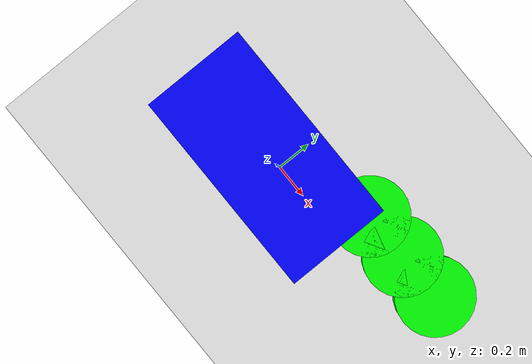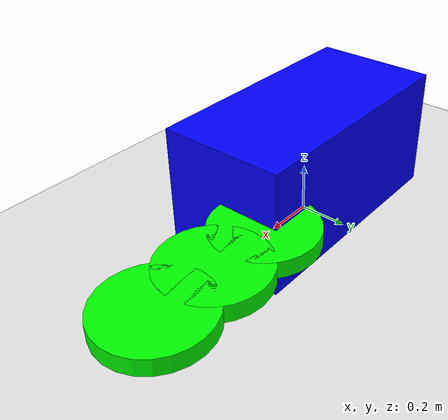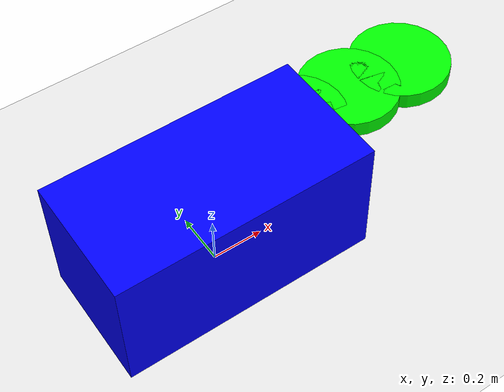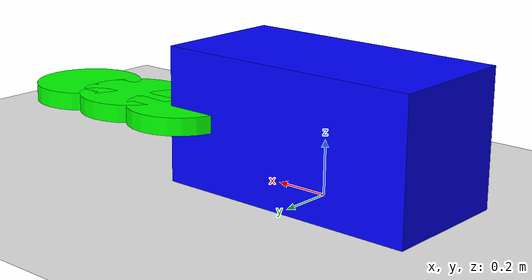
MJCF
<mujoco>
    <worldbody>
        <light diffuse=".5 .5 .5" pos="0 0 3" dir="0 0 -1" />
        <geom name="ground" type="plane" size="5 5 0.1" rgba=".9 .9 .9 1" />
        <body name="body">
            <freejoint name="root" />
            <geom name="torso" type="box" size="0.5 0.25 0.25" pos="0 0 0.25" rgba="0 0 1 1" mass="0.01" />
            <body name="wing0" pos="0.5 0 0.25" euler="0 0 90">
                <joint name="wing0link" type="hinge" axis="0 1 0" range="-45 45" />
                <geom name="wing0" type="cylinder" size="0.2 0.0325" pos="0.2 0 0" rgba="0 1 0 1" mass="1" />
            </body>
            <body name="wing1" pos="0.75 0 0.25" euler="0 0 90">
                <joint name="wing1link" type="hinge" axis="0 1 0" range="-45 45" />
                <geom name="wing1" type="cylinder" size="0.2 0.0325" pos="0.2 0 0" rgba="0 1 0 1" mass="1" />
            </body>
            <body name="wing2" pos="1.0 0 0.25" euler="0 0 90">
                <joint name="wing2link" type="hinge" axis="0 1 0" range="-45 45" />
                <geom name="wing2" type="cylinder" size="0.2 0.0325" pos="0.2 0 0" rgba="0 1 0 1" mass="1" />
            </body>
        </body>
    </worldbody>
    <actuator>
        <motor name="wing0m" joint="wing0link" gear="10" ctrllimited="true" ctrlrange="-5 5" />
        <motor name="wing1m" joint="wing1link" gear="10" ctrllimited="true" ctrlrange="-5 5" />
        <motor name="wing2m" joint="wing2link" gear="10" ctrllimited="true" ctrlrange="-5 5" />
    </actuator>
</mujoco>
